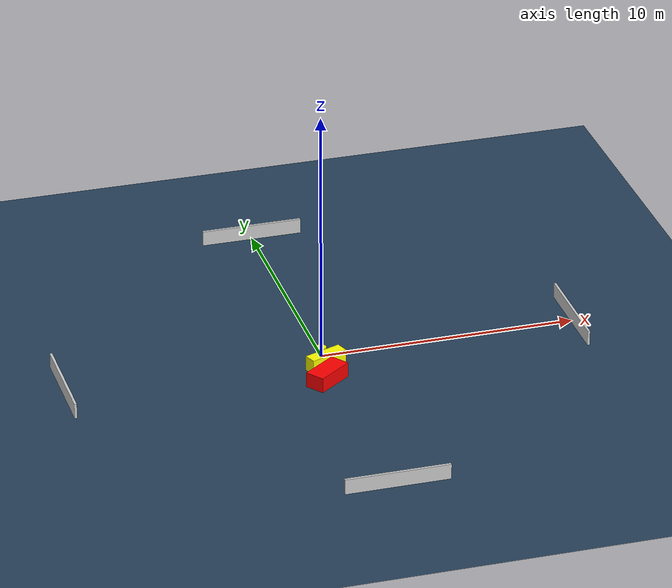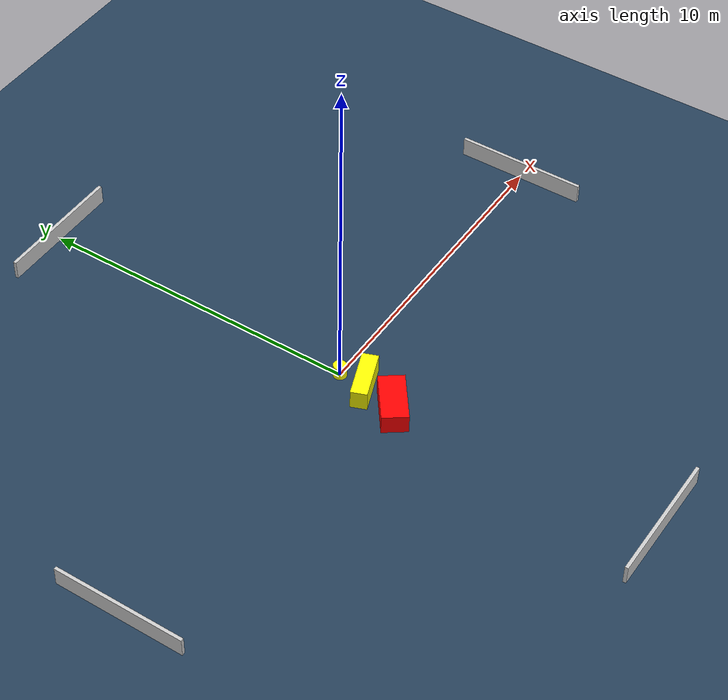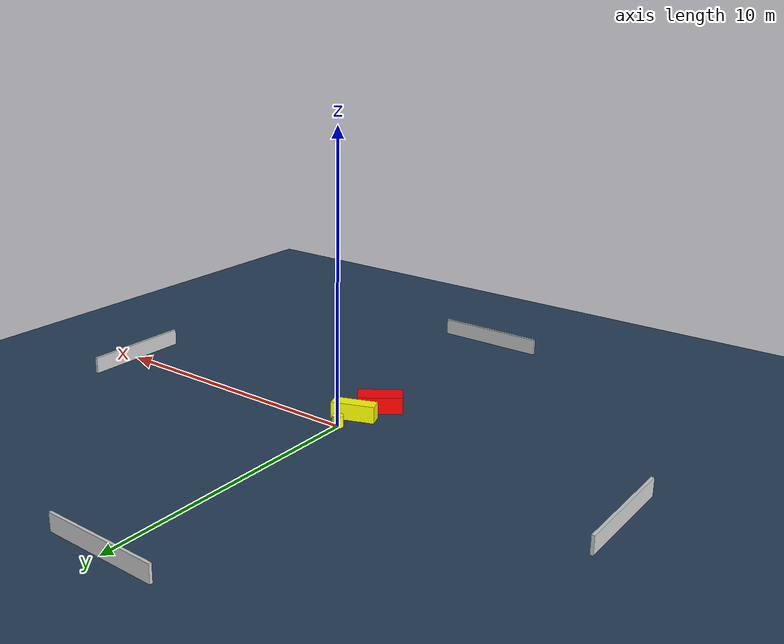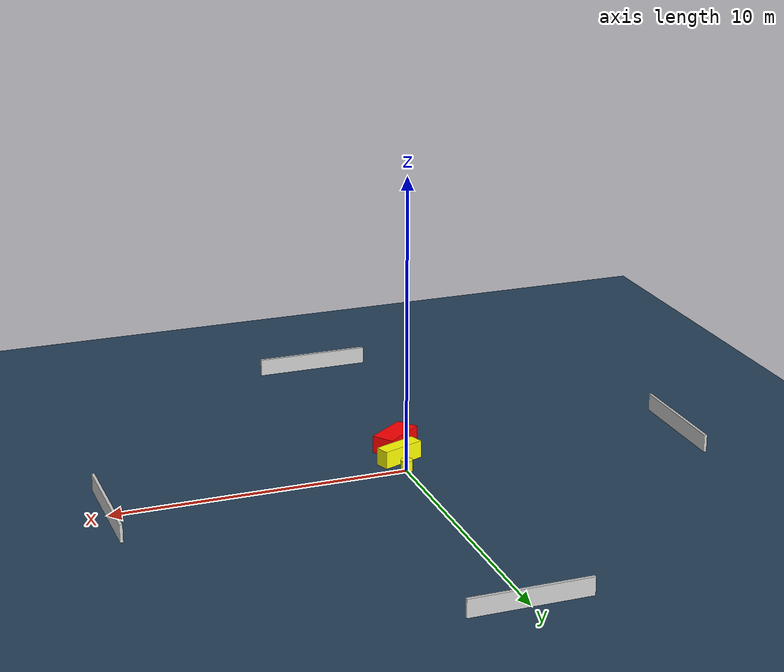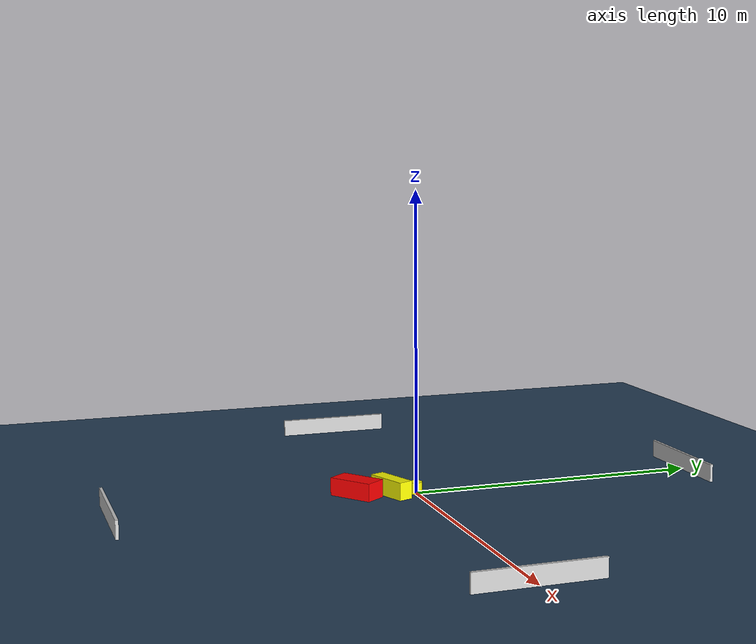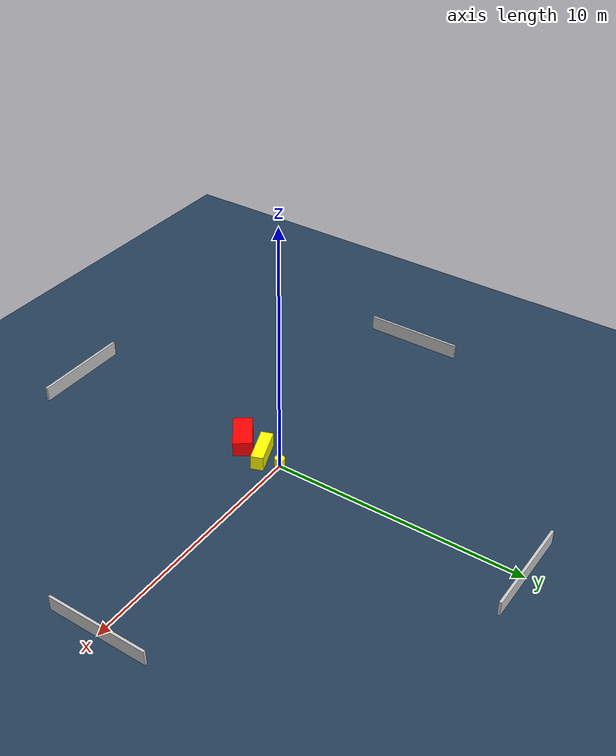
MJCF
<?xml version="1.0" ?>
<mujoco model="generated_environment">
  <option timestep="0.01" integrator="RK4" cone="elliptic"/>
  <default>
    <geom density="1"/>
  </default>
  <asset>
    <texture builtin="gradient" height="3072" name="skybox" rgb1="0.3 0.5 0.7" rgb2="0 0 0" type="skybox" width="512"/>
    <texture builtin="checker" height="300" name="groundplane" rgb1="0.2 0.3 0.4" rgb2="0.1 0.2 0.3" type="2d" width="300"/>
    <material name="groundplane" reflectance="0.2" texrepeat="5 5" texture="groundplane"/>
  </asset>
  <worldbody>
    <light dir="0 0 -1" directional="true" pos="0 0 1.5"/>
    <geom condim="3" friction="0.5 0.005 0.001" material="groundplane" name="floor" pos="0 0 0" size="0 0 0.05" type="plane"/>
    <body name="walls">
      <geom name="wall_1" condim="4" pos="-10.0 0.0 0.3" rgba="0.800000011920929 0.800000011920929 0.800000011920929 1.0" size="0.05 2.0 0.3" type="box"/>
      <geom name="wall_2" condim="4" pos="10.0 0.0 0.3" rgba="0.800000011920929 0.800000011920929 0.800000011920929 1.0" size="0.05 2.0 0.3" type="box"/>
      <geom name="wall_3" condim="4" pos="0.0 -10.0 0.3" rgba="0.800000011920929 0.800000011920929 0.800000011920929 1.0" size="2.0 0.05 0.3" type="box"/>
      <geom name="wall_4" condim="4" pos="0.0 10.0 0.3" rgba="0.800000011920929 0.800000011920929 0.800000011920929 1.0" size="2.0 0.05 0.3" type="box"/>
    </body>
    <body name="robot">
      <joint name="joint_x" type="slide" pos="0 0 0" axis="1 0 0"/>
      <joint name="joint_y" type="slide" pos="0 0 0" axis="0 1 0"/>
      <geom name="robot" type="cylinder" pos="0.0 0.0 0.2" size="0.2 0.2 0.0" mass="5.0" friction="1.0 0.005 0.0001" condim="4" rgba="1.0 1.0 0.0 1.0"/>
    </body>
    <body name="obstacle_1_movable">
      <geom name="obstacle_1_movable" condim="4" pos="-0.055068419665932254 -0.8474643965927788 0.3" euler="0 0 110.62987386304638" friction="0.0 0.005 0.001" rgba="1.0 1.0 0.0 1.0" size="0.24346927959745482 0.7589456911473325 0.3" type="box" mass="0.1"/>
      <joint type="free"/>
    </body>
    <body name="obstacle_2_static">
      <geom name="obstacle_2_static" condim="4" pos="-0.32588872052810514 -1.9547272690922586 0.3" euler="0 0 126.50209193542891" friction="0.0 0.005 0.001" rgba="1.0 0.0 0.0 1.0" size="0.38544011575205134 0.7797711723495717 0.3" type="box"/>
    </body>
  </worldbody>
  <actuator>
    <motor name="actuator_x" joint="joint_x" gear="1" ctrlrange="-1 1"/>
    <motor name="actuator_y" joint="joint_y" gear="1" ctrlrange="-1 1"/>
  </actuator>
</mujoco>
